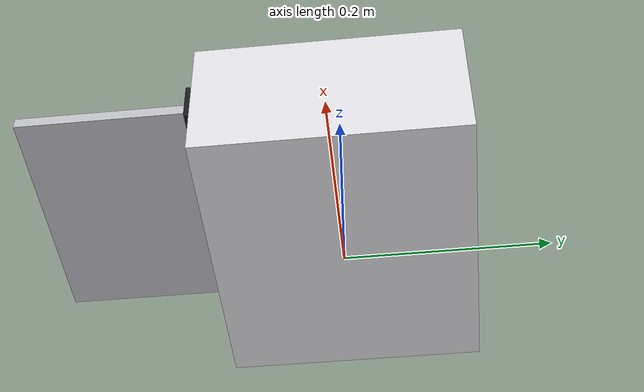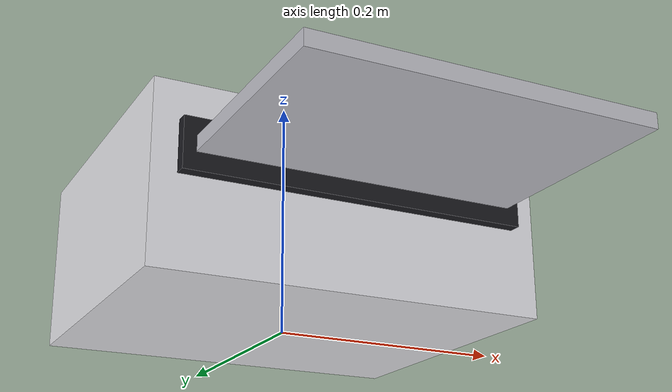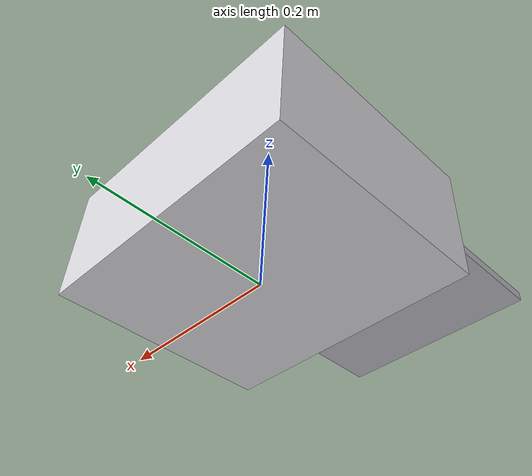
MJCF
<?xml version="1.0" encoding="utf-8"?>
<mujoco model="real_lab_geneva_university_slide_scanner">
  <compiler angle="radian" autolimits="true"/>
  <default>
    <default class="body"><geom contype="1" conaffinity="1"/></default>
  </default>
  <worldbody>
    <body name="base">
      <geom type="box" size="0.16 0.13 0.07" pos="0 0 0.07" rgba="0.88 0.88 0.9 1" class="body"/>
      <geom type="box" size="0.14 0.01 0.02" pos="0 -0.13 0.09" rgba="0.1 0.1 0.12 1" class="body"/>
      <geom type="box" size="0.03 0.02 0.01" pos="0.1 -0.1 0.145" rgba="0.1 0.35 0.75 1" class="body"/>
      <body name="slide_tray" pos="0.0 -0.13 0.09">
        <joint name="slide_tray_joint" type="slide" axis="0 1 0" range="0 0.12" damping="1.2" frictionloss="0.6"/>
  <geom type="box" size="0.13 0.09 0.006" pos="0 -0.09 0" rgba="0.75 0.75 0.78 1" class="body"/>
  <geom type="box" size="0.02 0.012 0.002" pos="-0.08 -0.09 0.008" rgba="0.9 0.9 0.92 1" class="body"/>
  <geom type="box" size="0.02 0.012 0.002" pos="-0.03 -0.09 0.008" rgba="0.9 0.9 0.92 1" class="body"/>
  <geom type="box" size="0.02 0.012 0.002" pos="0.02 -0.09 0.008" rgba="0.9 0.9 0.92 1" class="body"/>
      </body>
    </body>
  </worldbody>
</mujoco>
